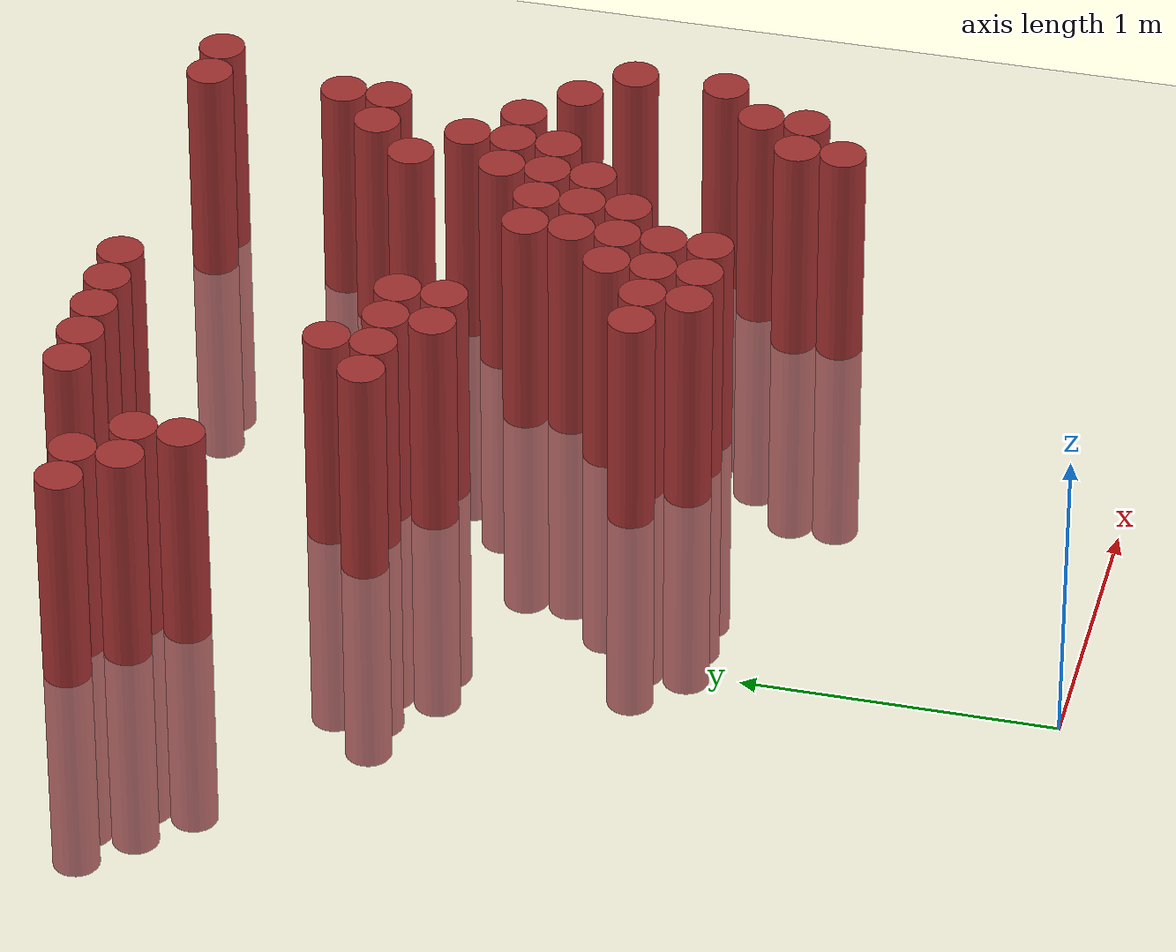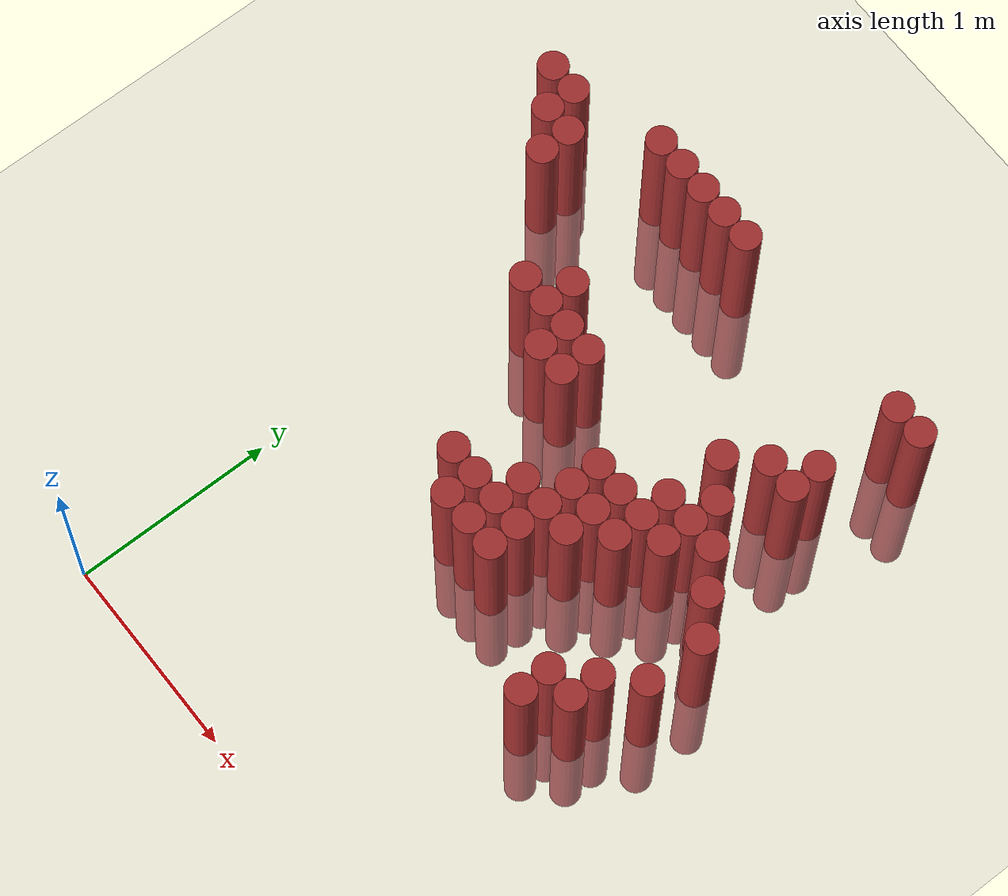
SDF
<sdf version="1.6">
 <world name="default">
  <model name="ground_plane">
   <static>1</static>
   <link name="link">
    <collision name="collision">
     <geometry><plane><normal>0 0 1</normal><size>100 100</size></plane></geometry>
     <surface><friction><ode><mu>100</mu><mu2>50</mu2></ode></friction></surface>
    </collision>
    <visual name="visual">
     <cast_shadows>0</cast_shadows>
     <geometry><plane><normal>0 0 1</normal><size>100 100</size></plane></geometry>
     <material>
      <script><uri>file://media/materials/scripts/gazebo.material</uri><name>Gazebo/Grey</name></script>
     </material>
    </visual>
   </link>
  </model>
  <model name="unit_cylinder_387">
   <static>1</static>
   <pose>-0.425000 3.025000 0.000000 0.000000 0.000000 0.000000</pose>
   <link name="link">
    <inertial>
     <mass>1</mass>
     <inertia><ixx>0.145833</ixx><ixy>0</ixy><ixz>0</ixz><iyy>0.145833</iyy><iyz>0</iyz><izz>0.125</izz></inertia>
    </inertial>
    <collision name="collision">
     <geometry><cylinder><radius>0.075000</radius><length>1.5</length></cylinder></geometry>
    </collision>
    <visual name="visual">
     <geometry><cylinder><radius>0.075000</radius><length>1.5</length></cylinder></geometry>
     <material>
      <ambient>0.648000 0.192000 0.192000 1</ambient>
      <diffuse>0.648000 0.192000 0.192000 1</diffuse>
     </material>
     <material>
      <script><name>Gazebo/Grey</name><uri>file://media/materials/scripts/gazebo.material</uri></script>
     </material>
    </visual>
   </link>
  </model>
  <model name="unit_cylinder_390">
   <static>1</static>
   <pose>-0.275000 2.875000 0.000000 0.000000 0.000000 0.000000</pose>
   <link name="link">
    <inertial>
     <mass>1</mass>
     <inertia><ixx>0.145833</ixx><ixy>0</ixy><ixz>0</ixz><iyy>0.145833</iyy><iyz>0</iyz><izz>0.125</izz></inertia>
    </inertial>
    <collision name="collision">
     <geometry><cylinder><radius>0.075000</radius><length>1.5</length></cylinder></geometry>
    </collision>
    <visual name="visual">
     <geometry><cylinder><radius>0.075000</radius><length>1.5</length></cylinder></geometry>
     <material>
      <ambient>0.648000 0.192000 0.192000 1</ambient>
      <diffuse>0.648000 0.192000 0.192000 1</diffuse>
     </material>
     <material>
      <script><name>Gazebo/Grey</name><uri>file://media/materials/scripts/gazebo.material</uri></script>
     </material>
    </visual>
   </link>
  </model>
  <model name="unit_cylinder_391">
   <static>1</static>
   <pose>-0.275000 3.025000 0.000000 0.000000 0.000000 0.000000</pose>
   <link name="link">
    <inertial>
     <mass>1</mass>
     <inertia><ixx>0.145833</ixx><ixy>0</ixy><ixz>0</ixz><iyy>0.145833</iyy><iyz>0</iyz><izz>0.125</izz></inertia>
    </inertial>
    <collision name="collision">
     <geometry><cylinder><radius>0.075000</radius><length>1.5</length></cylinder></geometry>
    </collision>
    <visual name="visual">
     <geometry><cylinder><radius>0.075000</radius><length>1.5</length></cylinder></geometry>
     <material>
      <ambient>0.648000 0.192000 0.192000 1</ambient>
      <diffuse>0.648000 0.192000 0.192000 1</diffuse>
     </material>
     <material>
      <script><name>Gazebo/Grey</name><uri>file://media/materials/scripts/gazebo.material</uri></script>
     </material>
    </visual>
   </link>
  </model>
  <model name="unit_cylinder_396">
   <static>1</static>
   <pose>-0.125000 2.725000 0.000000 0.000000 0.000000 0.000000</pose>
   <link name="link">
    <inertial>
     <mass>1</mass>
     <inertia><ixx>0.145833</ixx><ixy>0</ixy><ixz>0</ixz><iyy>0.145833</iyy><iyz>0</iyz><izz>0.125</izz></inertia>
    </inertial>
    <collision name="collision">
     <geometry><cylinder><radius>0.075000</radius><length>1.5</length></cylinder></geometry>
    </collision>
    <visual name="visual">
     <geometry><cylinder><radius>0.075000</radius><length>1.5</length></cylinder></geometry>
     <material>
      <ambient>0.648000 0.192000 0.192000 1</ambient>
      <diffuse>0.648000 0.192000 0.192000 1</diffuse>
     </material>
     <material>
      <script><name>Gazebo/Grey</name><uri>file://media/materials/scripts/gazebo.material</uri></script>
     </material>
    </visual>
   </link>
  </model>
  <model name="unit_cylinder_397">
   <static>1</static>
   <pose>-0.125000 2.875000 0.000000 0.000000 0.000000 0.000000</pose>
   <link name="link">
    <inertial>
     <mass>1</mass>
     <inertia><ixx>0.145833</ixx><ixy>0</ixy><ixz>0</ixz><iyy>0.145833</iyy><iyz>0</iyz><izz>0.125</izz></inertia>
    </inertial>
    <collision name="collision">
     <geometry><cylinder><radius>0.075000</radius><length>1.5</length></cylinder></geometry>
    </collision>
    <visual name="visual">
     <geometry><cylinder><radius>0.075000</radius><length>1.5</length></cylinder></geometry>
     <material>
      <ambient>0.648000 0.192000 0.192000 1</ambient>
      <diffuse>0.648000 0.192000 0.192000 1</diffuse>
     </material>
     <material>
      <script><name>Gazebo/Grey</name><uri>file://media/materials/scripts/gazebo.material</uri></script>
     </material>
    </visual>
   </link>
  </model>
  <model name="unit_cylinder_402">
   <static>1</static>
   <pose>0.175000 3.175000 0.000000 0.000000 0.000000 0.000000</pose>
   <link name="link">
    <inertial>
     <mass>1</mass>
     <inertia><ixx>0.145833</ixx><ixy>0</ixy><ixz>0</ixz><iyy>0.145833</iyy><iyz>0</iyz><izz>0.125</izz></inertia>
    </inertial>
    <collision name="collision">
     <geometry><cylinder><radius>0.075000</radius><length>1.5</length></cylinder></geometry>
    </collision>
    <visual name="visual">
     <geometry><cylinder><radius>0.075000</radius><length>1.5</length></cylinder></geometry>
     <material>
      <ambient>0.648000 0.192000 0.192000 1</ambient>
      <diffuse>0.648000 0.192000 0.192000 1</diffuse>
     </material>
     <material>
      <script><name>Gazebo/Grey</name><uri>file://media/materials/scripts/gazebo.material</uri></script>
     </material>
    </visual>
   </link>
  </model>
  <model name="unit_cylinder_405">
   <static>1</static>
   <pose>0.325000 2.275000 0.000000 0.000000 0.000000 0.000000</pose>
   <link name="link">
    <inertial>
     <mass>1</mass>
     <inertia><ixx>0.145833</ixx><ixy>0</ixy><ixz>0</ixz><iyy>0.145833</iyy><iyz>0</iyz><izz>0.125</izz></inertia>
    </inertial>
    <collision name="collision">
     <geometry><cylinder><radius>0.075000</radius><length>1.5</length></cylinder></geometry>
    </collision>
    <visual name="visual">
     <geometry><cylinder><radius>0.075000</radius><length>1.5</length></cylinder></geometry>
     <material>
      <ambient>0.648000 0.192000 0.192000 1</ambient>
      <diffuse>0.648000 0.192000 0.192000 1</diffuse>
     </material>
     <material>
      <script><name>Gazebo/Grey</name><uri>file://media/materials/scripts/gazebo.material</uri></script>
     </material>
    </visual>
   </link>
  </model>
  <model name="unit_cylinder_406">
   <static>1</static>
   <pose>0.325000 3.175000 0.000000 0.000000 0.000000 0.000000</pose>
   <link name="link">
    <inertial>
     <mass>1</mass>
     <inertia><ixx>0.145833</ixx><ixy>0</ixy><ixz>0</ixz><iyy>0.145833</iyy><iyz>0</iyz><izz>0.125</izz></inertia>
    </inertial>
    <collision name="collision">
     <geometry><cylinder><radius>0.075000</radius><length>1.5</length></cylinder></geometry>
    </collision>
    <visual name="visual">
     <geometry><cylinder><radius>0.075000</radius><length>1.5</length></cylinder></geometry>
     <material>
      <ambient>0.648000 0.192000 0.192000 1</ambient>
      <diffuse>0.648000 0.192000 0.192000 1</diffuse>
     </material>
     <material>
      <script><name>Gazebo/Grey</name><uri>file://media/materials/scripts/gazebo.material</uri></script>
     </material>
    </visual>
   </link>
  </model>
  <model name="unit_cylinder_410">
   <static>1</static>
   <pose>0.475000 2.275000 0.000000 0.000000 0.000000 0.000000</pose>
   <link name="link">
    <inertial>
     <mass>1</mass>
     <inertia><ixx>0.145833</ixx><ixy>0</ixy><ixz>0</ixz><iyy>0.145833</iyy><iyz>0</iyz><izz>0.125</izz></inertia>
    </inertial>
    <collision name="collision">
     <geometry><cylinder><radius>0.075000</radius><length>1.5</length></cylinder></geometry>
    </collision>
    <visual name="visual">
     <geometry><cylinder><radius>0.075000</radius><length>1.5</length></cylinder></geometry>
     <material>
      <ambient>0.648000 0.192000 0.192000 1</ambient>
      <diffuse>0.648000 0.192000 0.192000 1</diffuse>
     </material>
     <material>
      <script><name>Gazebo/Grey</name><uri>file://media/materials/scripts/gazebo.material</uri></script>
     </material>
    </visual>
   </link>
  </model>
  <model name="unit_cylinder_411">
   <static>1</static>
   <pose>0.475000 2.425000 0.000000 0.000000 0.000000 0.000000</pose>
   <link name="link">
    <inertial>
     <mass>1</mass>
     <inertia><ixx>0.145833</ixx><ixy>0</ixy><ixz>0</ixz><iyy>0.145833</iyy><iyz>0</iyz><izz>0.125</izz></inertia>
    </inertial>
    <collision name="collision">
     <geometry><cylinder><radius>0.075000</radius><length>1.5</length></cylinder></geometry>
    </collision>
    <visual name="visual">
     <geometry><cylinder><radius>0.075000</radius><length>1.5</length></cylinder></geometry>
     <material>
      <ambient>0.648000 0.192000 0.192000 1</ambient>
      <diffuse>0.648000 0.192000 0.192000 1</diffuse>
     </material>
     <material>
      <script><name>Gazebo/Grey</name><uri>file://media/materials/scripts/gazebo.material</uri></script>
     </material>
    </visual>
   </link>
  </model>
  <model name="unit_cylinder_412">
   <static>1</static>
   <pose>0.475000 3.175000 0.000000 0.000000 0.000000 0.000000</pose>
   <link name="link">
    <inertial>
     <mass>1</mass>
     <inertia><ixx>0.145833</ixx><ixy>0</ixy><ixz>0</ixz><iyy>0.145833</iyy><iyz>0</iyz><izz>0.125</izz></inertia>
    </inertial>
    <collision name="collision">
     <geometry><cylinder><radius>0.075000</radius><length>1.5</length></cylinder></geometry>
    </collision>
    <visual name="visual">
     <geometry><cylinder><radius>0.075000</radius><length>1.5</length></cylinder></geometry>
     <material>
      <ambient>0.648000 0.192000 0.192000 1</ambient>
      <diffuse>0.648000 0.192000 0.192000 1</diffuse>
     </material>
     <material>
      <script><name>Gazebo/Grey</name><uri>file://media/materials/scripts/gazebo.material</uri></script>
     </material>
    </visual>
   </link>
  </model>
  <model name="unit_cylinder_417">
   <static>1</static>
   <pose>0.625000 2.125000 0.000000 0.000000 0.000000 0.000000</pose>
   <link name="link">
    <inertial>
     <mass>1</mass>
     <inertia><ixx>0.145833</ixx><ixy>0</ixy><ixz>0</ixz><iyy>0.145833</iyy><iyz>0</iyz><izz>0.125</izz></inertia>
    </inertial>
    <collision name="collision">
     <geometry><cylinder><radius>0.075000</radius><length>1.5</length></cylinder></geometry>
    </collision>
    <visual name="visual">
     <geometry><cylinder><radius>0.075000</radius><length>1.5</length></cylinder></geometry>
     <material>
      <ambient>0.648000 0.192000 0.192000 1</ambient>
      <diffuse>0.648000 0.192000 0.192000 1</diffuse>
     </material>
     <material>
      <script><name>Gazebo/Grey</name><uri>file://media/materials/scripts/gazebo.material</uri></script>
     </material>
    </visual>
   </link>
  </model>
  <model name="unit_cylinder_418">
   <static>1</static>
   <pose>0.625000 2.275000 0.000000 0.000000 0.000000 0.000000</pose>
   <link name="link">
    <inertial>
     <mass>1</mass>
     <inertia><ixx>0.145833</ixx><ixy>0</ixy><ixz>0</ixz><iyy>0.145833</iyy><iyz>0</iyz><izz>0.125</izz></inertia>
    </inertial>
    <collision name="collision">
     <geometry><cylinder><radius>0.075000</radius><length>1.5</length></cylinder></geometry>
    </collision>
    <visual name="visual">
     <geometry><cylinder><radius>0.075000</radius><length>1.5</length></cylinder></geometry>
     <material>
      <ambient>0.648000 0.192000 0.192000 1</ambient>
      <diffuse>0.648000 0.192000 0.192000 1</diffuse>
     </material>
     <material>
      <script><name>Gazebo/Grey</name><uri>file://media/materials/scripts/gazebo.material</uri></script>
     </material>
    </visual>
   </link>
  </model>
  <model name="unit_cylinder_419">
   <static>1</static>
   <pose>0.625000 3.175000 0.000000 0.000000 0.000000 0.000000</pose>
   <link name="link">
    <inertial>
     <mass>1</mass>
     <inertia><ixx>0.145833</ixx><ixy>0</ixy><ixz>0</ixz><iyy>0.145833</iyy><iyz>0</iyz><izz>0.125</izz></inertia>
    </inertial>
    <collision name="collision">
     <geometry><cylinder><radius>0.075000</radius><length>1.5</length></cylinder></geometry>
    </collision>
    <visual name="visual">
     <geometry><cylinder><radius>0.075000</radius><length>1.5</length></cylinder></geometry>
     <material>
      <ambient>0.648000 0.192000 0.192000 1</ambient>
      <diffuse>0.648000 0.192000 0.192000 1</diffuse>
     </material>
     <material>
      <script><name>Gazebo/Grey</name><uri>file://media/materials/scripts/gazebo.material</uri></script>
     </material>
    </visual>
   </link>
  </model>
  <model name="unit_cylinder_425">
   <static>1</static>
   <pose>0.775000 1.525000 0.000000 0.000000 0.000000 0.000000</pose>
   <link name="link">
    <inertial>
     <mass>1</mass>
     <inertia><ixx>0.145833</ixx><ixy>0</ixy><ixz>0</ixz><iyy>0.145833</iyy><iyz>0</iyz><izz>0.125</izz></inertia>
    </inertial>
    <collision name="collision">
     <geometry><cylinder><radius>0.075000</radius><length>1.5</length></cylinder></geometry>
    </collision>
    <visual name="visual">
     <geometry><cylinder><radius>0.075000</radius><length>1.5</length></cylinder></geometry>
     <material>
      <ambient>0.648000 0.192000 0.192000 1</ambient>
      <diffuse>0.648000 0.192000 0.192000 1</diffuse>
     </material>
     <material>
      <script><name>Gazebo/Grey</name><uri>file://media/materials/scripts/gazebo.material</uri></script>
     </material>
    </visual>
   </link>
  </model>
  <model name="unit_cylinder_426">
   <static>1</static>
   <pose>0.775000 2.125000 0.000000 0.000000 0.000000 0.000000</pose>
   <link name="link">
    <inertial>
     <mass>1</mass>
     <inertia><ixx>0.145833</ixx><ixy>0</ixy><ixz>0</ixz><iyy>0.145833</iyy><iyz>0</iyz><izz>0.125</izz></inertia>
    </inertial>
    <collision name="collision">
     <geometry><cylinder><radius>0.075000</radius><length>1.5</length></cylinder></geometry>
    </collision>
    <visual name="visual">
     <geometry><cylinder><radius>0.075000</radius><length>1.5</length></cylinder></geometry>
     <material>
      <ambient>0.648000 0.192000 0.192000 1</ambient>
      <diffuse>0.648000 0.192000 0.192000 1</diffuse>
     </material>
     <material>
      <script><name>Gazebo/Grey</name><uri>file://media/materials/scripts/gazebo.material</uri></script>
     </material>
    </visual>
   </link>
  </model>
  <model name="unit_cylinder_427">
   <static>1</static>
   <pose>0.775000 2.275000 0.000000 0.000000 0.000000 0.000000</pose>
   <link name="link">
    <inertial>
     <mass>1</mass>
     <inertia><ixx>0.145833</ixx><ixy>0</ixy><ixz>0</ixz><iyy>0.145833</iyy><iyz>0</iyz><izz>0.125</izz></inertia>
    </inertial>
    <collision name="collision">
     <geometry><cylinder><radius>0.075000</radius><length>1.5</length></cylinder></geometry>
    </collision>
    <visual name="visual">
     <geometry><cylinder><radius>0.075000</radius><length>1.5</length></cylinder></geometry>
     <material>
      <ambient>0.648000 0.192000 0.192000 1</ambient>
      <diffuse>0.648000 0.192000 0.192000 1</diffuse>
     </material>
     <material>
      <script><name>Gazebo/Grey</name><uri>file://media/materials/scripts/gazebo.material</uri></script>
     </material>
    </visual>
   </link>
  </model>
  <model name="unit_cylinder_428">
   <static>1</static>
   <pose>0.775000 3.175000 0.000000 0.000000 0.000000 0.000000</pose>
   <link name="link">
    <inertial>
     <mass>1</mass>
     <inertia><ixx>0.145833</ixx><ixy>0</ixy><ixz>0</ixz><iyy>0.145833</iyy><iyz>0</iyz><izz>0.125</izz></inertia>
    </inertial>
    <collision name="collision">
     <geometry><cylinder><radius>0.075000</radius><length>1.5</length></cylinder></geometry>
    </collision>
    <visual name="visual">
     <geometry><cylinder><radius>0.075000</radius><length>1.5</length></cylinder></geometry>
     <material>
      <ambient>0.648000 0.192000 0.192000 1</ambient>
      <diffuse>0.648000 0.192000 0.192000 1</diffuse>
     </material>
     <material>
      <script><name>Gazebo/Grey</name><uri>file://media/materials/scripts/gazebo.material</uri></script>
     </material>
    </visual>
   </link>
  </model>
  <model name="unit_cylinder_438">
   <static>1</static>
   <pose>0.925000 1.375000 0.000000 0.000000 0.000000 0.000000</pose>
   <link name="link">
    <inertial>
     <mass>1</mass>
     <inertia><ixx>0.145833</ixx><ixy>0</ixy><ixz>0</ixz><iyy>0.145833</iyy><iyz>0</iyz><izz>0.125</izz></inertia>
    </inertial>
    <collision name="collision">
     <geometry><cylinder><radius>0.075000</radius><length>1.5</length></cylinder></geometry>
    </collision>
    <visual name="visual">
     <geometry><cylinder><radius>0.075000</radius><length>1.5</length></cylinder></geometry>
     <material>
      <ambient>0.648000 0.192000 0.192000 1</ambient>
      <diffuse>0.648000 0.192000 0.192000 1</diffuse>
     </material>
     <material>
      <script><name>Gazebo/Grey</name><uri>file://media/materials/scripts/gazebo.material</uri></script>
     </material>
    </visual>
   </link>
  </model>
  <model name="unit_cylinder_439">
   <static>1</static>
   <pose>0.925000 1.525000 0.000000 0.000000 0.000000 0.000000</pose>
   <link name="link">
    <inertial>
     <mass>1</mass>
     <inertia><ixx>0.145833</ixx><ixy>0</ixy><ixz>0</ixz><iyy>0.145833</iyy><iyz>0</iyz><izz>0.125</izz></inertia>
    </inertial>
    <collision name="collision">
     <geometry><cylinder><radius>0.075000</radius><length>1.5</length></cylinder></geometry>
    </collision>
    <visual name="visual">
     <geometry><cylinder><radius>0.075000</radius><length>1.5</length></cylinder></geometry>
     <material>
      <ambient>0.648000 0.192000 0.192000 1</ambient>
      <diffuse>0.648000 0.192000 0.192000 1</diffuse>
     </material>
     <material>
      <script><name>Gazebo/Grey</name><uri>file://media/materials/scripts/gazebo.material</uri></script>
     </material>
    </visual>
   </link>
  </model>
  <model name="unit_cylinder_448">
   <static>1</static>
   <pose>1.075000 1.375000 0.000000 0.000000 0.000000 0.000000</pose>
   <link name="link">
    <inertial>
     <mass>1</mass>
     <inertia><ixx>0.145833</ixx><ixy>0</ixy><ixz>0</ixz><iyy>0.145833</iyy><iyz>0</iyz><izz>0.125</izz></inertia>
    </inertial>
    <collision name="collision">
     <geometry><cylinder><radius>0.075000</radius><length>1.5</length></cylinder></geometry>
    </collision>
    <visual name="visual">
     <geometry><cylinder><radius>0.075000</radius><length>1.5</length></cylinder></geometry>
     <material>
      <ambient>0.648000 0.192000 0.192000 1</ambient>
      <diffuse>0.648000 0.192000 0.192000 1</diffuse>
     </material>
     <material>
      <script><name>Gazebo/Grey</name><uri>file://media/materials/scripts/gazebo.material</uri></script>
     </material>
    </visual>
   </link>
  </model>
  <model name="unit_cylinder_449">
   <static>1</static>
   <pose>1.075000 1.525000 0.000000 0.000000 0.000000 0.000000</pose>
   <link name="link">
    <inertial>
     <mass>1</mass>
     <inertia><ixx>0.145833</ixx><ixy>0</ixy><ixz>0</ixz><iyy>0.145833</iyy><iyz>0</iyz><izz>0.125</izz></inertia>
    </inertial>
    <collision name="collision">
     <geometry><cylinder><radius>0.075000</radius><length>1.5</length></cylinder></geometry>
    </collision>
    <visual name="visual">
     <geometry><cylinder><radius>0.075000</radius><length>1.5</length></cylinder></geometry>
     <material>
      <ambient>0.648000 0.192000 0.192000 1</ambient>
      <diffuse>0.648000 0.192000 0.192000 1</diffuse>
     </material>
     <material>
      <script><name>Gazebo/Grey</name><uri>file://media/materials/scripts/gazebo.material</uri></script>
     </material>
    </visual>
   </link>
  </model>
  <model name="unit_cylinder_450">
   <static>1</static>
   <pose>1.075000 1.675000 0.000000 0.000000 0.000000 0.000000</pose>
   <link name="link">
    <inertial>
     <mass>1</mass>
     <inertia><ixx>0.145833</ixx><ixy>0</ixy><ixz>0</ixz><iyy>0.145833</iyy><iyz>0</iyz><izz>0.125</izz></inertia>
    </inertial>
    <collision name="collision">
     <geometry><cylinder><radius>0.075000</radius><length>1.5</length></cylinder></geometry>
    </collision>
    <visual name="visual">
     <geometry><cylinder><radius>0.075000</radius><length>1.5</length></cylinder></geometry>
     <material>
      <ambient>0.648000 0.192000 0.192000 1</ambient>
      <diffuse>0.648000 0.192000 0.192000 1</diffuse>
     </material>
     <material>
      <script><name>Gazebo/Grey</name><uri>file://media/materials/scripts/gazebo.material</uri></script>
     </material>
    </visual>
   </link>
  </model>
  <model name="unit_cylinder_456">
   <static>1</static>
   <pose>1.225000 1.375000 0.000000 0.000000 0.000000 0.000000</pose>
   <link name="link">
    <inertial>
     <mass>1</mass>
     <inertia><ixx>0.145833</ixx><ixy>0</ixy><ixz>0</ixz><iyy>0.145833</iyy><iyz>0</iyz><izz>0.125</izz></inertia>
    </inertial>
    <collision name="collision">
     <geometry><cylinder><radius>0.075000</radius><length>1.5</length></cylinder></geometry>
    </collision>
    <visual name="visual">
     <geometry><cylinder><radius>0.075000</radius><length>1.5</length></cylinder></geometry>
     <material>
      <ambient>0.648000 0.192000 0.192000 1</ambient>
      <diffuse>0.648000 0.192000 0.192000 1</diffuse>
     </material>
     <material>
      <script><name>Gazebo/Grey</name><uri>file://media/materials/scripts/gazebo.material</uri></script>
     </material>
    </visual>
   </link>
  </model>
  <model name="unit_cylinder_457">
   <static>1</static>
   <pose>1.225000 1.525000 0.000000 0.000000 0.000000 0.000000</pose>
   <link name="link">
    <inertial>
     <mass>1</mass>
     <inertia><ixx>0.145833</ixx><ixy>0</ixy><ixz>0</ixz><iyy>0.145833</iyy><iyz>0</iyz><izz>0.125</izz></inertia>
    </inertial>
    <collision name="collision">
     <geometry><cylinder><radius>0.075000</radius><length>1.5</length></cylinder></geometry>
    </collision>
    <visual name="visual">
     <geometry><cylinder><radius>0.075000</radius><length>1.5</length></cylinder></geometry>
     <material>
      <ambient>0.648000 0.192000 0.192000 1</ambient>
      <diffuse>0.648000 0.192000 0.192000 1</diffuse>
     </material>
     <material>
      <script><name>Gazebo/Grey</name><uri>file://media/materials/scripts/gazebo.material</uri></script>
     </material>
    </visual>
   </link>
  </model>
  <model name="unit_cylinder_458">
   <static>1</static>
   <pose>1.225000 1.675000 0.000000 0.000000 0.000000 0.000000</pose>
   <link name="link">
    <inertial>
     <mass>1</mass>
     <inertia><ixx>0.145833</ixx><ixy>0</ixy><ixz>0</ixz><iyy>0.145833</iyy><iyz>0</iyz><izz>0.125</izz></inertia>
    </inertial>
    <collision name="collision">
     <geometry><cylinder><radius>0.075000</radius><length>1.5</length></cylinder></geometry>
    </collision>
    <visual name="visual">
     <geometry><cylinder><radius>0.075000</radius><length>1.5</length></cylinder></geometry>
     <material>
      <ambient>0.648000 0.192000 0.192000 1</ambient>
      <diffuse>0.648000 0.192000 0.192000 1</diffuse>
     </material>
     <material>
      <script><name>Gazebo/Grey</name><uri>file://media/materials/scripts/gazebo.material</uri></script>
     </material>
    </visual>
   </link>
  </model>
  <model name="unit_cylinder_459">
   <static>1</static>
   <pose>1.225000 1.825000 0.000000 0.000000 0.000000 0.000000</pose>
   <link name="link">
    <inertial>
     <mass>1</mass>
     <inertia><ixx>0.145833</ixx><ixy>0</ixy><ixz>0</ixz><iyy>0.145833</iyy><iyz>0</iyz><izz>0.125</izz></inertia>
    </inertial>
    <collision name="collision">
     <geometry><cylinder><radius>0.075000</radius><length>1.5</length></cylinder></geometry>
    </collision>
    <visual name="visual">
     <geometry><cylinder><radius>0.075000</radius><length>1.5</length></cylinder></geometry>
     <material>
      <ambient>0.648000 0.192000 0.192000 1</ambient>
      <diffuse>0.648000 0.192000 0.192000 1</diffuse>
     </material>
     <material>
      <script><name>Gazebo/Grey</name><uri>file://media/materials/scripts/gazebo.material</uri></script>
     </material>
    </visual>
   </link>
  </model>
  <model name="unit_cylinder_460">
   <static>1</static>
   <pose>1.225000 1.975000 0.000000 0.000000 0.000000 0.000000</pose>
   <link name="link">
    <inertial>
     <mass>1</mass>
     <inertia><ixx>0.145833</ixx><ixy>0</ixy><ixz>0</ixz><iyy>0.145833</iyy><iyz>0</iyz><izz>0.125</izz></inertia>
    </inertial>
    <collision name="collision">
     <geometry><cylinder><radius>0.075000</radius><length>1.5</length></cylinder></geometry>
    </collision>
    <visual name="visual">
     <geometry><cylinder><radius>0.075000</radius><length>1.5</length></cylinder></geometry>
     <material>
      <ambient>0.648000 0.192000 0.192000 1</ambient>
      <diffuse>0.648000 0.192000 0.192000 1</diffuse>
     </material>
     <material>
      <script><name>Gazebo/Grey</name><uri>file://media/materials/scripts/gazebo.material</uri></script>
     </material>
    </visual>
   </link>
  </model>
  <model name="unit_cylinder_464">
   <static>1</static>
   <pose>1.375000 1.675000 0.000000 0.000000 0.000000 0.000000</pose>
   <link name="link">
    <inertial>
     <mass>1</mass>
     <inertia><ixx>0.145833</ixx><ixy>0</ixy><ixz>0</ixz><iyy>0.145833</iyy><iyz>0</iyz><izz>0.125</izz></inertia>
    </inertial>
    <collision name="collision">
     <geometry><cylinder><radius>0.075000</radius><length>1.5</length></cylinder></geometry>
    </collision>
    <visual name="visual">
     <geometry><cylinder><radius>0.075000</radius><length>1.5</length></cylinder></geometry>
     <material>
      <ambient>0.648000 0.192000 0.192000 1</ambient>
      <diffuse>0.648000 0.192000 0.192000 1</diffuse>
     </material>
     <material>
      <script><name>Gazebo/Grey</name><uri>file://media/materials/scripts/gazebo.material</uri></script>
     </material>
    </visual>
   </link>
  </model>
  <model name="unit_cylinder_465">
   <static>1</static>
   <pose>1.375000 1.825000 0.000000 0.000000 0.000000 0.000000</pose>
   <link name="link">
    <inertial>
     <mass>1</mass>
     <inertia><ixx>0.145833</ixx><ixy>0</ixy><ixz>0</ixz><iyy>0.145833</iyy><iyz>0</iyz><izz>0.125</izz></inertia>
    </inertial>
    <collision name="collision">
     <geometry><cylinder><radius>0.075000</radius><length>1.5</length></cylinder></geometry>
    </collision>
    <visual name="visual">
     <geometry><cylinder><radius>0.075000</radius><length>1.5</length></cylinder></geometry>
     <material>
      <ambient>0.648000 0.192000 0.192000 1</ambient>
      <diffuse>0.648000 0.192000 0.192000 1</diffuse>
     </material>
     <material>
      <script><name>Gazebo/Grey</name><uri>file://media/materials/scripts/gazebo.material</uri></script>
     </material>
    </visual>
   </link>
  </model>
  <model name="unit_cylinder_466">
   <static>1</static>
   <pose>1.375000 1.975000 0.000000 0.000000 0.000000 0.000000</pose>
   <link name="link">
    <inertial>
     <mass>1</mass>
     <inertia><ixx>0.145833</ixx><ixy>0</ixy><ixz>0</ixz><iyy>0.145833</iyy><iyz>0</iyz><izz>0.125</izz></inertia>
    </inertial>
    <collision name="collision">
     <geometry><cylinder><radius>0.075000</radius><length>1.5</length></cylinder></geometry>
    </collision>
    <visual name="visual">
     <geometry><cylinder><radius>0.075000</radius><length>1.5</length></cylinder></geometry>
     <material>
      <ambient>0.648000 0.192000 0.192000 1</ambient>
      <diffuse>0.648000 0.192000 0.192000 1</diffuse>
     </material>
     <material>
      <script><name>Gazebo/Grey</name><uri>file://media/materials/scripts/gazebo.material</uri></script>
     </material>
    </visual>
   </link>
  </model>
  <model name="unit_cylinder_473">
   <static>1</static>
   <pose>1.525000 1.825000 0.000000 0.000000 0.000000 0.000000</pose>
   <link name="link">
    <inertial>
     <mass>1</mass>
     <inertia><ixx>0.145833</ixx><ixy>0</ixy><ixz>0</ixz><iyy>0.145833</iyy><iyz>0</iyz><izz>0.125</izz></inertia>
    </inertial>
    <collision name="collision">
     <geometry><cylinder><radius>0.075000</radius><length>1.5</length></cylinder></geometry>
    </collision>
    <visual name="visual">
     <geometry><cylinder><radius>0.075000</radius><length>1.5</length></cylinder></geometry>
     <material>
      <ambient>0.648000 0.192000 0.192000 1</ambient>
      <diffuse>0.648000 0.192000 0.192000 1</diffuse>
     </material>
     <material>
      <script><name>Gazebo/Grey</name><uri>file://media/materials/scripts/gazebo.material</uri></script>
     </material>
    </visual>
   </link>
  </model>
  <model name="unit_cylinder_474">
   <static>1</static>
   <pose>1.525000 1.975000 0.000000 0.000000 0.000000 0.000000</pose>
   <link name="link">
    <inertial>
     <mass>1</mass>
     <inertia><ixx>0.145833</ixx><ixy>0</ixy><ixz>0</ixz><iyy>0.145833</iyy><iyz>0</iyz><izz>0.125</izz></inertia>
    </inertial>
    <collision name="collision">
     <geometry><cylinder><radius>0.075000</radius><length>1.5</length></cylinder></geometry>
    </collision>
    <visual name="visual">
     <geometry><cylinder><radius>0.075000</radius><length>1.5</length></cylinder></geometry>
     <material>
      <ambient>0.648000 0.192000 0.192000 1</ambient>
      <diffuse>0.648000 0.192000 0.192000 1</diffuse>
     </material>
     <material>
      <script><name>Gazebo/Grey</name><uri>file://media/materials/scripts/gazebo.material</uri></script>
     </material>
    </visual>
   </link>
  </model>
  <model name="unit_cylinder_475">
   <static>1</static>
   <pose>1.525000 2.125000 0.000000 0.000000 0.000000 0.000000</pose>
   <link name="link">
    <inertial>
     <mass>1</mass>
     <inertia><ixx>0.145833</ixx><ixy>0</ixy><ixz>0</ixz><iyy>0.145833</iyy><iyz>0</iyz><izz>0.125</izz></inertia>
    </inertial>
    <collision name="collision">
     <geometry><cylinder><radius>0.075000</radius><length>1.5</length></cylinder></geometry>
    </collision>
    <visual name="visual">
     <geometry><cylinder><radius>0.075000</radius><length>1.5</length></cylinder></geometry>
     <material>
      <ambient>0.648000 0.192000 0.192000 1</ambient>
      <diffuse>0.648000 0.192000 0.192000 1</diffuse>
     </material>
     <material>
      <script><name>Gazebo/Grey</name><uri>file://media/materials/scripts/gazebo.material</uri></script>
     </material>
    </visual>
   </link>
  </model>
  <model name="unit_cylinder_476">
   <static>1</static>
   <pose>1.525000 2.425000 0.000000 0.000000 0.000000 0.000000</pose>
   <link name="link">
    <inertial>
     <mass>1</mass>
     <inertia><ixx>0.145833</ixx><ixy>0</ixy><ixz>0</ixz><iyy>0.145833</iyy><iyz>0</iyz><izz>0.125</izz></inertia>
    </inertial>
    <collision name="collision">
     <geometry><cylinder><radius>0.075000</radius><length>1.5</length></cylinder></geometry>
    </collision>
    <visual name="visual">
     <geometry><cylinder><radius>0.075000</radius><length>1.5</length></cylinder></geometry>
     <material>
      <ambient>0.648000 0.192000 0.192000 1</ambient>
      <diffuse>0.648000 0.192000 0.192000 1</diffuse>
     </material>
     <material>
      <script><name>Gazebo/Grey</name><uri>file://media/materials/scripts/gazebo.material</uri></script>
     </material>
    </visual>
   </link>
  </model>
  <model name="unit_cylinder_480">
   <static>1</static>
   <pose>1.675000 1.975000 0.000000 0.000000 0.000000 0.000000</pose>
   <link name="link">
    <inertial>
     <mass>1</mass>
     <inertia><ixx>0.145833</ixx><ixy>0</ixy><ixz>0</ixz><iyy>0.145833</iyy><iyz>0</iyz><izz>0.125</izz></inertia>
    </inertial>
    <collision name="collision">
     <geometry><cylinder><radius>0.075000</radius><length>1.5</length></cylinder></geometry>
    </collision>
    <visual name="visual">
     <geometry><cylinder><radius>0.075000</radius><length>1.5</length></cylinder></geometry>
     <material>
      <ambient>0.648000 0.192000 0.192000 1</ambient>
      <diffuse>0.648000 0.192000 0.192000 1</diffuse>
     </material>
     <material>
      <script><name>Gazebo/Grey</name><uri>file://media/materials/scripts/gazebo.material</uri></script>
     </material>
    </visual>
   </link>
  </model>
  <model name="unit_cylinder_481">
   <static>1</static>
   <pose>1.675000 2.125000 0.000000 0.000000 0.000000 0.000000</pose>
   <link name="link">
    <inertial>
     <mass>1</mass>
     <inertia><ixx>0.145833</ixx><ixy>0</ixy><ixz>0</ixz><iyy>0.145833</iyy><iyz>0</iyz><izz>0.125</izz></inertia>
    </inertial>
    <collision name="collision">
     <geometry><cylinder><radius>0.075000</radius><length>1.5</length></cylinder></geometry>
    </collision>
    <visual name="visual">
     <geometry><cylinder><radius>0.075000</radius><length>1.5</length></cylinder></geometry>
     <material>
      <ambient>0.648000 0.192000 0.192000 1</ambient>
      <diffuse>0.648000 0.192000 0.192000 1</diffuse>
     </material>
     <material>
      <script><name>Gazebo/Grey</name><uri>file://media/materials/scripts/gazebo.material</uri></script>
     </material>
    </visual>
   </link>
  </model>
  <model name="unit_cylinder_482">
   <static>1</static>
   <pose>1.675000 2.275000 0.000000 0.000000 0.000000 0.000000</pose>
   <link name="link">
    <inertial>
     <mass>1</mass>
     <inertia><ixx>0.145833</ixx><ixy>0</ixy><ixz>0</ixz><iyy>0.145833</iyy><iyz>0</iyz><izz>0.125</izz></inertia>
    </inertial>
    <collision name="collision">
     <geometry><cylinder><radius>0.075000</radius><length>1.5</length></cylinder></geometry>
    </collision>
    <visual name="visual">
     <geometry><cylinder><radius>0.075000</radius><length>1.5</length></cylinder></geometry>
     <material>
      <ambient>0.648000 0.192000 0.192000 1</ambient>
      <diffuse>0.648000 0.192000 0.192000 1</diffuse>
     </material>
     <material>
      <script><name>Gazebo/Grey</name><uri>file://media/materials/scripts/gazebo.material</uri></script>
     </material>
    </visual>
   </link>
  </model>
  <model name="unit_cylinder_483">
   <static>1</static>
   <pose>1.675000 2.575000 0.000000 0.000000 0.000000 0.000000</pose>
   <link name="link">
    <inertial>
     <mass>1</mass>
     <inertia><ixx>0.145833</ixx><ixy>0</ixy><ixz>0</ixz><iyy>0.145833</iyy><iyz>0</iyz><izz>0.125</izz></inertia>
    </inertial>
    <collision name="collision">
     <geometry><cylinder><radius>0.075000</radius><length>1.5</length></cylinder></geometry>
    </collision>
    <visual name="visual">
     <geometry><cylinder><radius>0.075000</radius><length>1.5</length></cylinder></geometry>
     <material>
      <ambient>0.648000 0.192000 0.192000 1</ambient>
      <diffuse>0.648000 0.192000 0.192000 1</diffuse>
     </material>
     <material>
      <script><name>Gazebo/Grey</name><uri>file://media/materials/scripts/gazebo.material</uri></script>
     </material>
    </visual>
   </link>
  </model>
  <model name="unit_cylinder_484">
   <static>1</static>
   <pose>1.825000 1.075000 0.000000 0.000000 0.000000 0.000000</pose>
   <link name="link">
    <inertial>
     <mass>1</mass>
     <inertia><ixx>0.145833</ixx><ixy>0</ixy><ixz>0</ixz><iyy>0.145833</iyy><iyz>0</iyz><izz>0.125</izz></inertia>
    </inertial>
    <collision name="collision">
     <geometry><cylinder><radius>0.075000</radius><length>1.5</length></cylinder></geometry>
    </collision>
    <visual name="visual">
     <geometry><cylinder><radius>0.075000</radius><length>1.5</length></cylinder></geometry>
     <material>
      <ambient>0.648000 0.192000 0.192000 1</ambient>
      <diffuse>0.648000 0.192000 0.192000 1</diffuse>
     </material>
     <material>
      <script><name>Gazebo/Grey</name><uri>file://media/materials/scripts/gazebo.material</uri></script>
     </material>
    </visual>
   </link>
  </model>
  <model name="unit_cylinder_485">
   <static>1</static>
   <pose>1.825000 1.225000 0.000000 0.000000 0.000000 0.000000</pose>
   <link name="link">
    <inertial>
     <mass>1</mass>
     <inertia><ixx>0.145833</ixx><ixy>0</ixy><ixz>0</ixz><iyy>0.145833</iyy><iyz>0</iyz><izz>0.125</izz></inertia>
    </inertial>
    <collision name="collision">
     <geometry><cylinder><radius>0.075000</radius><length>1.5</length></cylinder></geometry>
    </collision>
    <visual name="visual">
     <geometry><cylinder><radius>0.075000</radius><length>1.5</length></cylinder></geometry>
     <material>
      <ambient>0.648000 0.192000 0.192000 1</ambient>
      <diffuse>0.648000 0.192000 0.192000 1</diffuse>
     </material>
     <material>
      <script><name>Gazebo/Grey</name><uri>file://media/materials/scripts/gazebo.material</uri></script>
     </material>
    </visual>
   </link>
  </model>
  <model name="unit_cylinder_486">
   <static>1</static>
   <pose>1.825000 2.125000 0.000000 0.000000 0.000000 0.000000</pose>
   <link name="link">
    <inertial>
     <mass>1</mass>
     <inertia><ixx>0.145833</ixx><ixy>0</ixy><ixz>0</ixz><iyy>0.145833</iyy><iyz>0</iyz><izz>0.125</izz></inertia>
    </inertial>
    <collision name="collision">
     <geometry><cylinder><radius>0.075000</radius><length>1.5</length></cylinder></geometry>
    </collision>
    <visual name="visual">
     <geometry><cylinder><radius>0.075000</radius><length>1.5</length></cylinder></geometry>
     <material>
      <ambient>0.648000 0.192000 0.192000 1</ambient>
      <diffuse>0.648000 0.192000 0.192000 1</diffuse>
     </material>
     <material>
      <script><name>Gazebo/Grey</name><uri>file://media/materials/scripts/gazebo.material</uri></script>
     </material>
    </visual>
   </link>
  </model>
  <model name="unit_cylinder_487">
   <static>1</static>
   <pose>1.825000 2.575000 0.000000 0.000000 0.000000 0.000000</pose>
   <link name="link">
    <inertial>
     <mass>1</mass>
     <inertia><ixx>0.145833</ixx><ixy>0</ixy><ixz>0</ixz><iyy>0.145833</iyy><iyz>0</iyz><izz>0.125</izz></inertia>
    </inertial>
    <collision name="collision">
     <geometry><cylinder><radius>0.075000</radius><length>1.5</length></cylinder></geometry>
    </collision>
    <visual name="visual">
     <geometry><cylinder><radius>0.075000</radius><length>1.5</length></cylinder></geometry>
     <material>
      <ambient>0.648000 0.192000 0.192000 1</ambient>
      <diffuse>0.648000 0.192000 0.192000 1</diffuse>
     </material>
     <material>
      <script><name>Gazebo/Grey</name><uri>file://media/materials/scripts/gazebo.material</uri></script>
     </material>
    </visual>
   </link>
  </model>
  <model name="unit_cylinder_488">
   <static>1</static>
   <pose>1.825000 2.725000 0.000000 0.000000 0.000000 0.000000</pose>
   <link name="link">
    <inertial>
     <mass>1</mass>
     <inertia><ixx>0.145833</ixx><ixy>0</ixy><ixz>0</ixz><iyy>0.145833</iyy><iyz>0</iyz><izz>0.125</izz></inertia>
    </inertial>
    <collision name="collision">
     <geometry><cylinder><radius>0.075000</radius><length>1.5</length></cylinder></geometry>
    </collision>
    <visual name="visual">
     <geometry><cylinder><radius>0.075000</radius><length>1.5</length></cylinder></geometry>
     <material>
      <ambient>0.648000 0.192000 0.192000 1</ambient>
      <diffuse>0.648000 0.192000 0.192000 1</diffuse>
     </material>
     <material>
      <script><name>Gazebo/Grey</name><uri>file://media/materials/scripts/gazebo.material</uri></script>
     </material>
    </visual>
   </link>
  </model>
  <model name="unit_cylinder_489">
   <static>1</static>
   <pose>1.825000 3.175000 0.000000 0.000000 0.000000 0.000000</pose>
   <link name="link">
    <inertial>
     <mass>1</mass>
     <inertia><ixx>0.145833</ixx><ixy>0</ixy><ixz>0</ixz><iyy>0.145833</iyy><iyz>0</iyz><izz>0.125</izz></inertia>
    </inertial>
    <collision name="collision">
     <geometry><cylinder><radius>0.075000</radius><length>1.5</length></cylinder></geometry>
    </collision>
    <visual name="visual">
     <geometry><cylinder><radius>0.075000</radius><length>1.5</length></cylinder></geometry>
     <material>
      <ambient>0.648000 0.192000 0.192000 1</ambient>
      <diffuse>0.648000 0.192000 0.192000 1</diffuse>
     </material>
     <material>
      <script><name>Gazebo/Grey</name><uri>file://media/materials/scripts/gazebo.material</uri></script>
     </material>
    </visual>
   </link>
  </model>
  <model name="unit_cylinder_490">
   <static>1</static>
   <pose>1.975000 1.225000 0.000000 0.000000 0.000000 0.000000</pose>
   <link name="link">
    <inertial>
     <mass>1</mass>
     <inertia><ixx>0.145833</ixx><ixy>0</ixy><ixz>0</ixz><iyy>0.145833</iyy><iyz>0</iyz><izz>0.125</izz></inertia>
    </inertial>
    <collision name="collision">
     <geometry><cylinder><radius>0.075000</radius><length>1.5</length></cylinder></geometry>
    </collision>
    <visual name="visual">
     <geometry><cylinder><radius>0.075000</radius><length>1.5</length></cylinder></geometry>
     <material>
      <ambient>0.648000 0.192000 0.192000 1</ambient>
      <diffuse>0.648000 0.192000 0.192000 1</diffuse>
     </material>
     <material>
      <script><name>Gazebo/Grey</name><uri>file://media/materials/scripts/gazebo.material</uri></script>
     </material>
    </visual>
   </link>
  </model>
  <model name="unit_cylinder_491">
   <static>1</static>
   <pose>1.975000 1.375000 0.000000 0.000000 0.000000 0.000000</pose>
   <link name="link">
    <inertial>
     <mass>1</mass>
     <inertia><ixx>0.145833</ixx><ixy>0</ixy><ixz>0</ixz><iyy>0.145833</iyy><iyz>0</iyz><izz>0.125</izz></inertia>
    </inertial>
    <collision name="collision">
     <geometry><cylinder><radius>0.075000</radius><length>1.5</length></cylinder></geometry>
    </collision>
    <visual name="visual">
     <geometry><cylinder><radius>0.075000</radius><length>1.5</length></cylinder></geometry>
     <material>
      <ambient>0.648000 0.192000 0.192000 1</ambient>
      <diffuse>0.648000 0.192000 0.192000 1</diffuse>
     </material>
     <material>
      <script><name>Gazebo/Grey</name><uri>file://media/materials/scripts/gazebo.material</uri></script>
     </material>
    </visual>
   </link>
  </model>
  <model name="unit_cylinder_492">
   <static>1</static>
   <pose>1.975000 1.975000 0.000000 0.000000 0.000000 0.000000</pose>
   <link name="link">
    <inertial>
     <mass>1</mass>
     <inertia><ixx>0.145833</ixx><ixy>0</ixy><ixz>0</ixz><iyy>0.145833</iyy><iyz>0</iyz><izz>0.125</izz></inertia>
    </inertial>
    <collision name="collision">
     <geometry><cylinder><radius>0.075000</radius><length>1.5</length></cylinder></geometry>
    </collision>
    <visual name="visual">
     <geometry><cylinder><radius>0.075000</radius><length>1.5</length></cylinder></geometry>
     <material>
      <ambient>0.648000 0.192000 0.192000 1</ambient>
      <diffuse>0.648000 0.192000 0.192000 1</diffuse>
     </material>
     <material>
      <script><name>Gazebo/Grey</name><uri>file://media/materials/scripts/gazebo.material</uri></script>
     </material>
    </visual>
   </link>
  </model>
  <model name="unit_cylinder_493">
   <static>1</static>
   <pose>1.975000 3.175000 0.000000 0.000000 0.000000 0.000000</pose>
   <link name="link">
    <inertial>
     <mass>1</mass>
     <inertia><ixx>0.145833</ixx><ixy>0</ixy><ixz>0</ixz><iyy>0.145833</iyy><iyz>0</iyz><izz>0.125</izz></inertia>
    </inertial>
    <collision name="collision">
     <geometry><cylinder><radius>0.075000</radius><length>1.5</length></cylinder></geometry>
    </collision>
    <visual name="visual">
     <geometry><cylinder><radius>0.075000</radius><length>1.5</length></cylinder></geometry>
     <material>
      <ambient>0.648000 0.192000 0.192000 1</ambient>
      <diffuse>0.648000 0.192000 0.192000 1</diffuse>
     </material>
     <material>
      <script><name>Gazebo/Grey</name><uri>file://media/materials/scripts/gazebo.material</uri></script>
     </material>
    </visual>
   </link>
  </model>
  <model name="unit_cylinder_500">
   <static>1</static>
   <pose>2.125000 1.525000 0.000000 0.000000 0.000000 0.000000</pose>
   <link name="link">
    <inertial>
     <mass>1</mass>
     <inertia><ixx>0.145833</ixx><ixy>0</ixy><ixz>0</ixz><iyy>0.145833</iyy><iyz>0</iyz><izz>0.125</izz></inertia>
    </inertial>
    <collision name="collision">
     <geometry><cylinder><radius>0.075000</radius><length>1.5</length></cylinder></geometry>
    </collision>
    <visual name="visual">
     <geometry><cylinder><radius>0.075000</radius><length>1.5</length></cylinder></geometry>
     <material>
      <ambient>0.648000 0.192000 0.192000 1</ambient>
      <diffuse>0.648000 0.192000 0.192000 1</diffuse>
     </material>
     <material>
      <script><name>Gazebo/Grey</name><uri>file://media/materials/scripts/gazebo.material</uri></script>
     </material>
    </visual>
   </link>
  </model>
  <model name="unit_cylinder_501">
   <static>1</static>
   <pose>2.125000 1.825000 0.000000 0.000000 0.000000 0.000000</pose>
   <link name="link">
    <inertial>
     <mass>1</mass>
     <inertia><ixx>0.145833</ixx><ixy>0</ixy><ixz>0</ixz><iyy>0.145833</iyy><iyz>0</iyz><izz>0.125</izz></inertia>
    </inertial>
    <collision name="collision">
     <geometry><cylinder><radius>0.075000</radius><length>1.5</length></cylinder></geometry>
    </collision>
    <visual name="visual">
     <geometry><cylinder><radius>0.075000</radius><length>1.5</length></cylinder></geometry>
     <material>
      <ambient>0.648000 0.192000 0.192000 1</ambient>
      <diffuse>0.648000 0.192000 0.192000 1</diffuse>
     </material>
     <material>
      <script><name>Gazebo/Grey</name><uri>file://media/materials/scripts/gazebo.material</uri></script>
     </material>
    </visual>
   </link>
  </model>
 </world>
</sdf>
